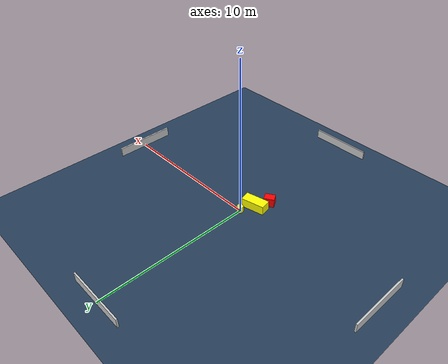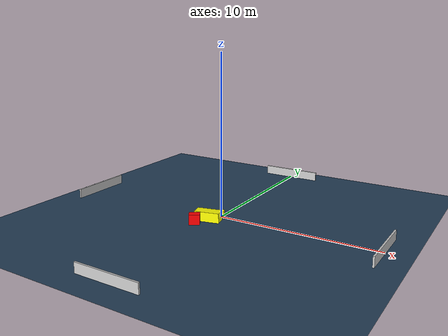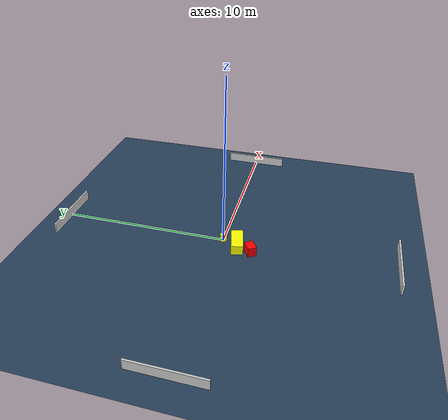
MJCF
<?xml version="1.0" ?>
<mujoco model="generated_environment">
  <option timestep="0.01" integrator="RK4" cone="elliptic"/>
  <default>
    <geom density="1"/>
  </default>
  <asset>
    <texture builtin="gradient" height="3072" name="skybox" rgb1="0.3 0.5 0.7" rgb2="0 0 0" type="skybox" width="512"/>
    <texture builtin="checker" height="300" name="groundplane" rgb1="0.2 0.3 0.4" rgb2="0.1 0.2 0.3" type="2d" width="300"/>
    <material name="groundplane" reflectance="0.2" texrepeat="5 5" texture="groundplane"/>
  </asset>
  <worldbody>
    <light dir="0 0 -1" directional="true" pos="0 0 1.5"/>
    <geom condim="3" friction="0.5 0.005 0.001" material="groundplane" name="floor" pos="0 0 0" size="0 0 0.05" type="plane"/>
    <body name="walls">
      <geom name="wall_1" condim="4" pos="-10.0 0.0 0.3" rgba="0.800000011920929 0.800000011920929 0.800000011920929 1.0" size="0.05 2.0 0.3" type="box"/>
      <geom name="wall_2" condim="4" pos="10.0 0.0 0.3" rgba="0.800000011920929 0.800000011920929 0.800000011920929 1.0" size="0.05 2.0 0.3" type="box"/>
      <geom name="wall_3" condim="4" pos="0.0 -10.0 0.3" rgba="0.800000011920929 0.800000011920929 0.800000011920929 1.0" size="2.0 0.05 0.3" type="box"/>
      <geom name="wall_4" condim="4" pos="0.0 10.0 0.3" rgba="0.800000011920929 0.800000011920929 0.800000011920929 1.0" size="2.0 0.05 0.3" type="box"/>
    </body>
    <body name="robot">
      <joint name="joint_x" type="slide" pos="0 0 0" axis="1 0 0"/>
      <joint name="joint_y" type="slide" pos="0 0 0" axis="0 1 0"/>
      <geom name="robot" type="cylinder" pos="0.0 0.0 0.2" size="0.2 0.2 0.0" mass="5.0" friction="1.0 0.005 0.0001" condim="4" rgba="1.0 1.0 0.0 1.0"/>
    </body>
    <body name="obstacle_1_movable">
      <geom name="obstacle_1_movable" condim="4" pos="-0.3827493852387865 -0.8981043506932134 0.3" euler="0 0 282.43398180590464" friction="0.0 0.005 0.001" rgba="1.0 1.0 0.0 1.0" size="0.3443231503906664 0.7730185811036654 0.3" type="box" mass="0.1"/>
      <joint type="free"/>
    </body>
    <body name="obstacle_2_static">
      <geom name="obstacle_2_static" condim="4" pos="-0.7903883241158077 -1.7743619939010544 0.3" euler="0 0 120.84336482768973" friction="0.0 0.005 0.001" rgba="1.0 0.0 0.0 1.0" size="0.2583274834940984 0.32849218676561587 0.3" type="box"/>
    </body>
  </worldbody>
  <actuator>
    <motor name="actuator_x" joint="joint_x" gear="1" ctrlrange="-1 1"/>
    <motor name="actuator_y" joint="joint_y" gear="1" ctrlrange="-1 1"/>
  </actuator>
</mujoco>
